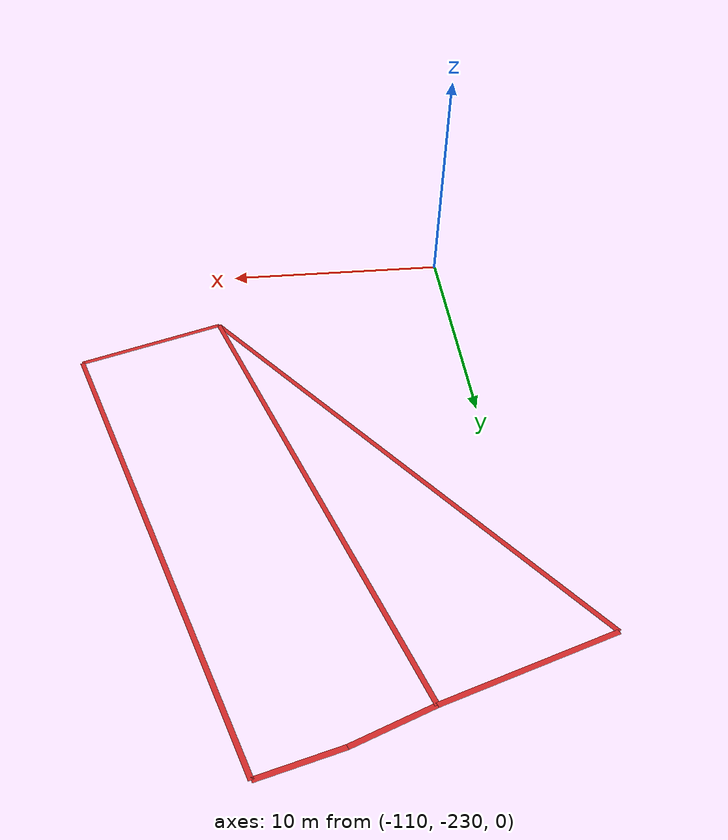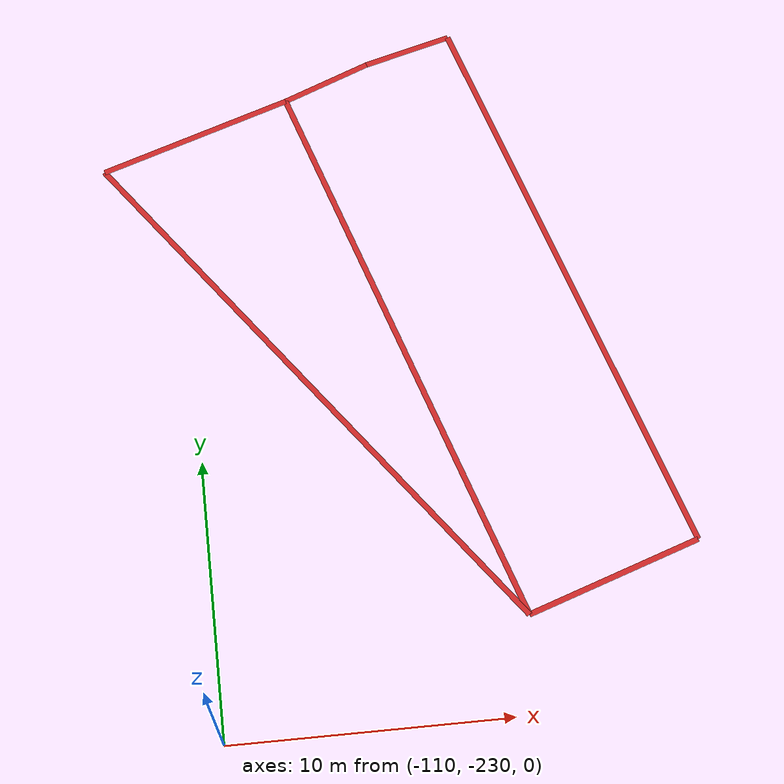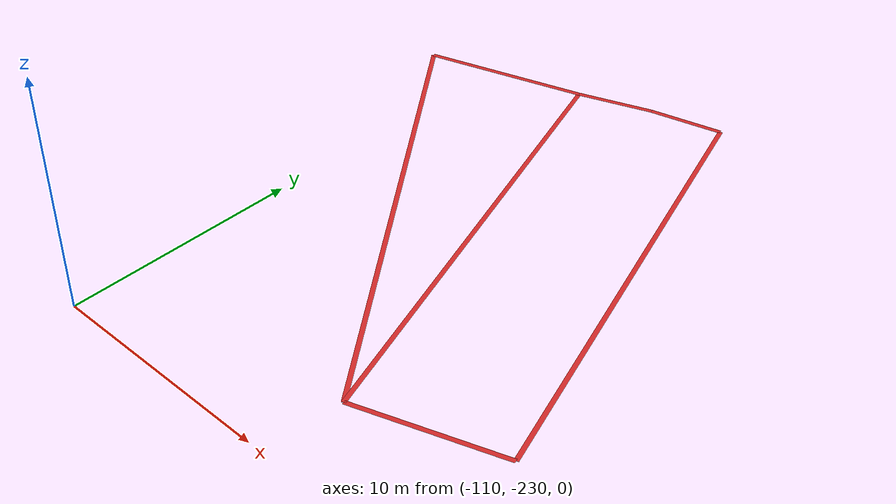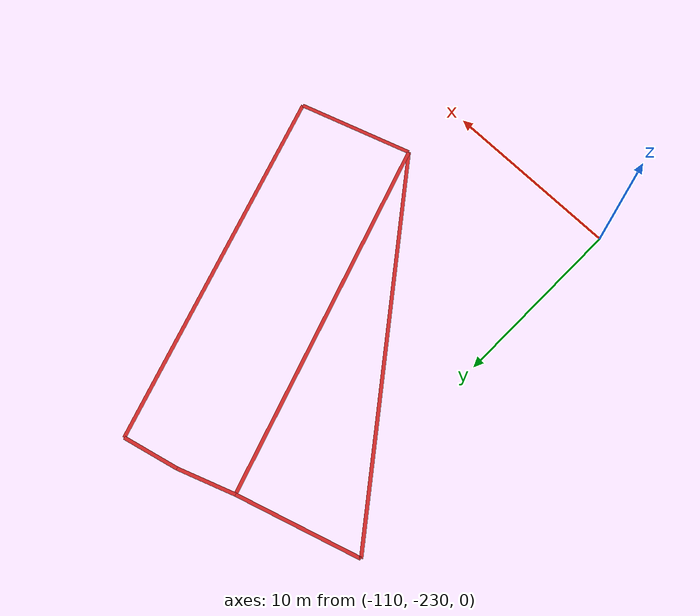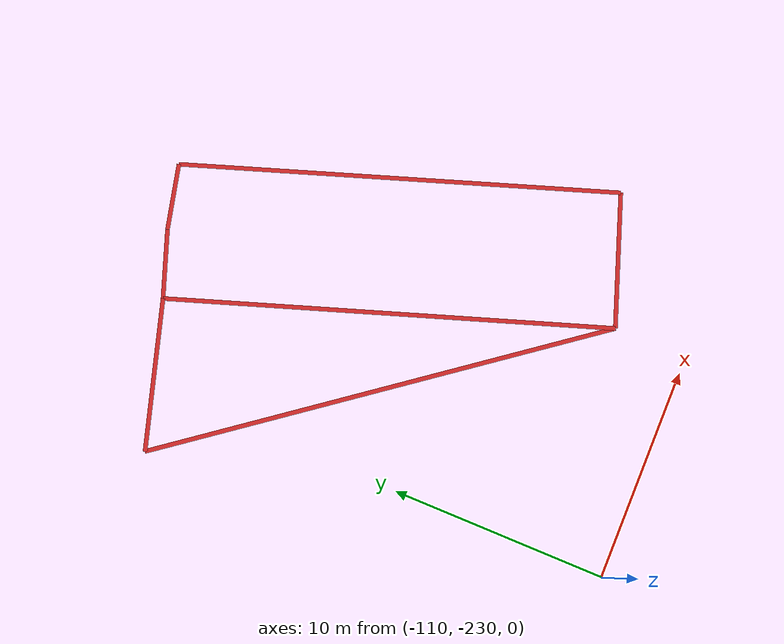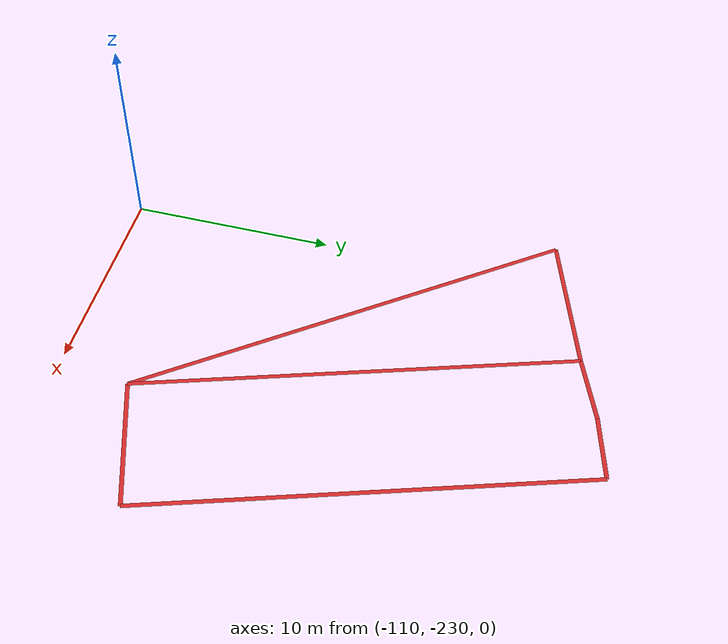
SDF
<sdf version="1.4">
 <world name="default">
  <include><uri>model://sun</uri></include>
  <model name="office_building_40955735">
   <static>true</static>
   <pose>-101.088665746 -212.347393866 0.0 0 0 0</pose>
   <link name="office_building_40955735_0">
    <collision name="office_building_40955735_0">
     <geometry><box><size>21.0471797371 0.2 0</size></box></geometry>
    </collision>
    <visual name="office_building_40955735_0">
     <geometry><box><size>21.0471797371 0.2 0</size></box></geometry>
     <material>
      <script><uri>file://media/materials/scripts/gazebo.material</uri><name>Gazebo/Red</name></script>
     </material>
    </visual>
    <pose>-1.44536573449 -4.19035412572 0 0 0 1.89729006231</pose>
   </link>
   <link name="office_building_40955735_1">
    <collision name="office_building_40955735_1">
     <geometry><box><size>6.49352208494 0.2 0</size></box></geometry>
    </collision>
    <visual name="office_building_40955735_1">
     <geometry><box><size>6.49352208494 0.2 0</size></box></geometry>
     <material>
      <script><uri>file://media/materials/scripts/gazebo.material</uri><name>Gazebo/Red</name></script>
     </material>
    </visual>
    <pose>5.0042977345 -13.1144922505 0 0 0 -2.81438185154</pose>
   </link>
   <link name="office_building_40955735_2">
    <collision name="office_building_40955735_2">
     <geometry><box><size>20.9142008394 0.2 0</size></box></geometry>
    </collision>
    <visual name="office_building_40955735_2">
     <geometry><box><size>20.9142008394 0.2 0</size></box></geometry>
     <material>
      <script><uri>file://media/materials/scripts/gazebo.material</uri><name>Gazebo/Red</name></script>
     </material>
    </visual>
    <pose>4.72031175265 -2.1678652693 0 0 0 -1.24383416982</pose>
   </link>
   <link name="office_building_40955735_3">
    <collision name="office_building_40955735_3">
     <geometry><box><size>3.19205783355 0.2 0</size></box></geometry>
    </collision>
    <visual name="office_building_40955735_3">
     <geometry><box><size>3.19205783355 0.2 0</size></box></geometry>
     <material>
      <script><uri>file://media/materials/scripts/gazebo.material</uri><name>Gazebo/Red</name></script>
     </material>
    </visual>
    <pose>-0.183764492914 7.33718927838 0 0 0 0.252063117387</pose>
   </link>
   <link name="office_building_40955735_4">
    <collision name="office_building_40955735_4">
     <geometry><box><size>3.30230450178 0.2 0</size></box></geometry>
    </collision>
    <visual name="office_building_40955735_4">
     <geometry><box><size>3.30230450178 0.2 0</size></box></geometry>
     <material>
      <script><uri>file://media/materials/scripts/gazebo.material</uri><name>Gazebo/Red</name></script>
     </material>
    </visual>
    <pose>-3.27494601816 6.35821939502 0 0 0 0.359519899448</pose>
   </link>
  </model>
  <model name="office_building_179245106">
   <static>true</static>
   <pose>-105.920096895 -212.093609055 0.0 0 0 0</pose>
   <link name="office_building_179245106_0">
    <collision name="office_building_179245106_0">
     <geometry><box><size>7.12865185384 0.2 0</size></box></geometry>
    </collision>
    <visual name="office_building_179245106_0">
     <geometry><box><size>7.12865185384 0.2 0</size></box></geometry>
     <material>
      <script><uri>file://media/materials/scripts/gazebo.material</uri><name>Gazebo/Red</name></script>
     </material>
    </visual>
    <pose>-3.38606541418 4.44413893737 0 0 0 0.307659041897</pose>
   </link>
   <link name="office_building_179245106_1">
    <collision name="office_building_179245106_1">
     <geometry><box><size>22.3484441995 0.2 0</size></box></geometry>
    </collision>
    <visual name="office_building_179245106_1">
     <geometry><box><size>22.3484441995 0.2 0</size></box></geometry>
     <material>
      <script><uri>file://media/materials/scripts/gazebo.material</uri><name>Gazebo/Red</name></script>
     </material>
    </visual>
    <pose>-0.0108979070882 -5.52351816047 0 0 0 2.22188084938</pose>
   </link>
   <link name="office_building_179245106_2">
    <collision name="office_building_179245106_2">
     <geometry><box><size>21.0471797371 0.2 0</size></box></geometry>
    </collision>
    <visual name="office_building_179245106_2">
     <geometry><box><size>21.0471797371 0.2 0</size></box></geometry>
     <material>
      <script><uri>file://media/materials/scripts/gazebo.material</uri><name>Gazebo/Red</name></script>
     </material>
    </visual>
    <pose>3.38606541418 -4.44413893737 0 0 0 -1.24430259128</pose>
   </link>
  </model>
 </world>
</sdf>
